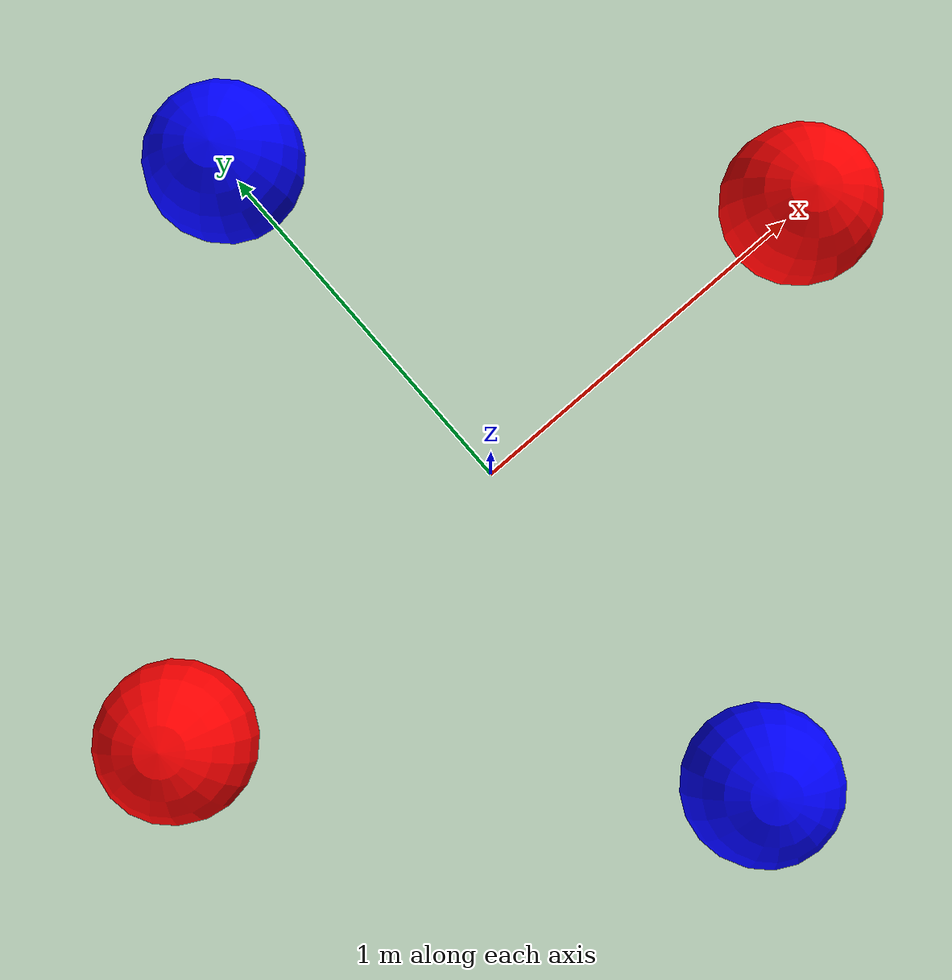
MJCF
<mujoco model="collision_filtering">
    <!-- 시뮬레이션 옵션: 중력 및 정밀도를 위한 타임스텝 설정 -->
    <option gravity="0 0 -9.81" timestep="0.001" />

    <worldbody>
        <!-- 바닥: 모든 그룹(1, 2)과 충돌하도록 설정 (1|2 = 3) -->
        <geom name="floor" type="plane" size="5 5 0.1" rgba="0.8 0.9 0.8 1" contype="3" conaffinity="3" />
        <light pos="0 0 5" dir="0 0 -1" />

        <!-- 그룹 1 (빨간색): 탄성 있음 (Elastic) -->
        <!-- contype=1, conaffinity=1 (자기들끼리만 충돌) -->
        <body name="ball_a1" pos="-1 0 0.2">
            <joint type="free" />
            <!-- solref="0.02 1" 설정으로 탄성 부여 -->
            <geom name="geom_a1" type="sphere" size="0.2" rgba="1 0 0 1" contype="1" conaffinity="1" solref="0.02 1" />
        </body>
        <body name="ball_a2" pos="1 0 0.2">
            <joint type="free" />
            <geom name="geom_a2" type="sphere" size="0.2" rgba="1 0 0 1" contype="1" conaffinity="1" solref="0.02 1" />
        </body>

        <!-- 그룹 2 (파란색): 탄성 없음 (Inelastic) -->
        <!-- contype=2, conaffinity=2 (자기들끼리만 충돌) -->
        <body name="ball_b1" pos="0 -1 0.2">
            <joint type="free" />
            <!-- solref=" 0.1 1" 설정으로 탄성 억제 -->
            <geom name="geom_b1" type="sphere" size="0.2" rgba="0 0 1 1" contype="2" conaffinity="2" solref="0.1 1" />
        </body>
        <body name="ball_b2" pos="0 1 0.2">
            <joint type="free" />
            <geom name="geom_b2" type="sphere" size="0.2" rgba="0 0 1 1" contype="2" conaffinity="2" solref="0.1 1" />
        </body>
    </worldbody>
</mujoco>
